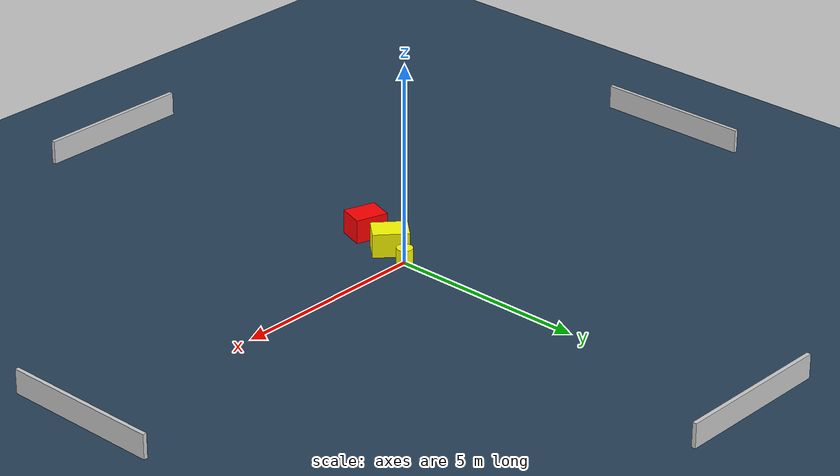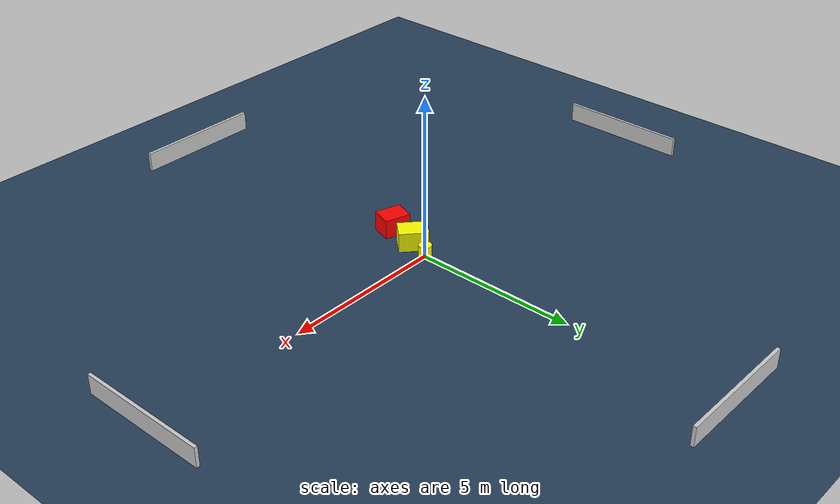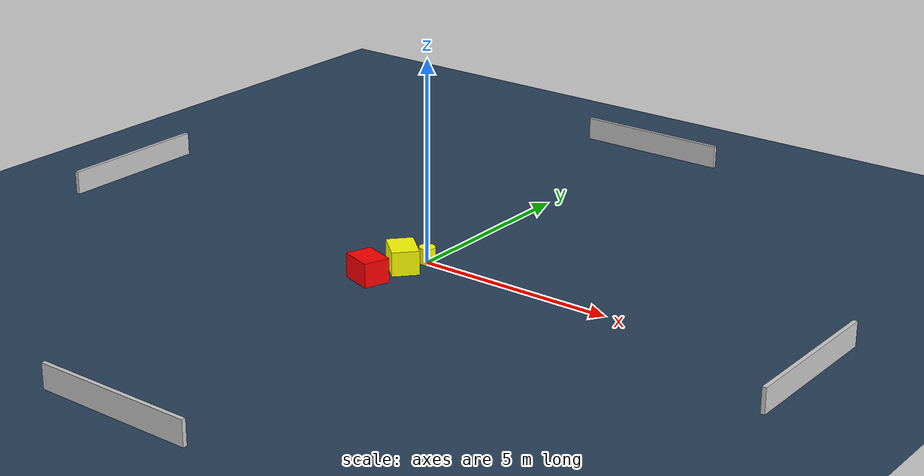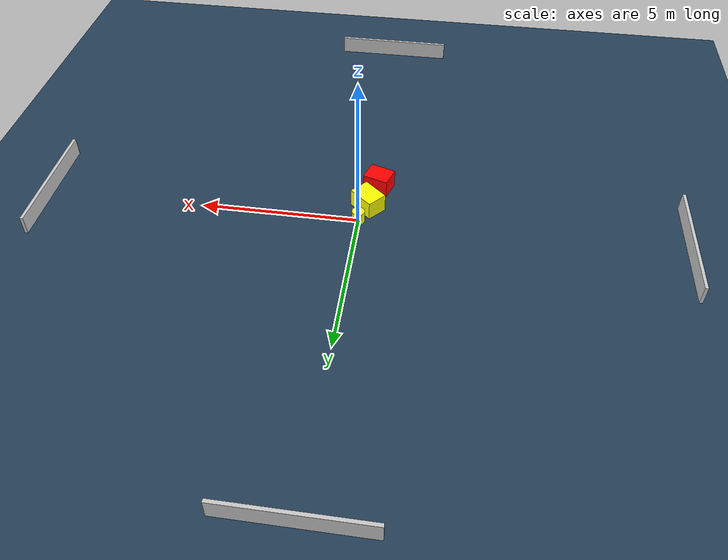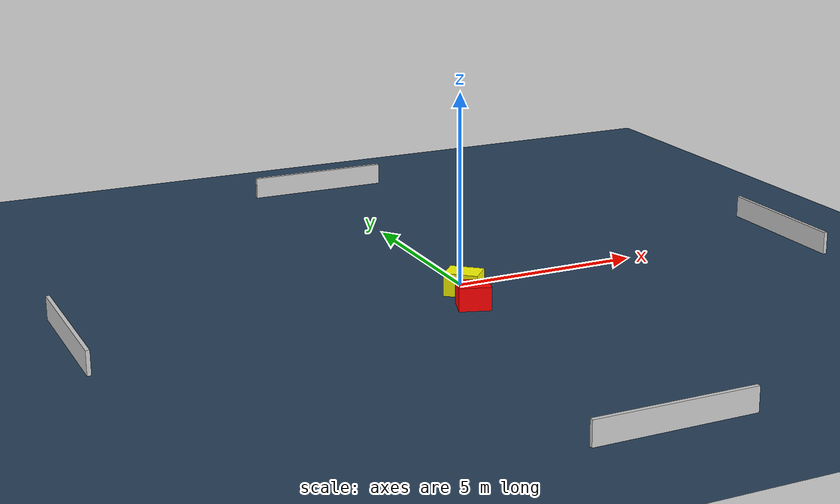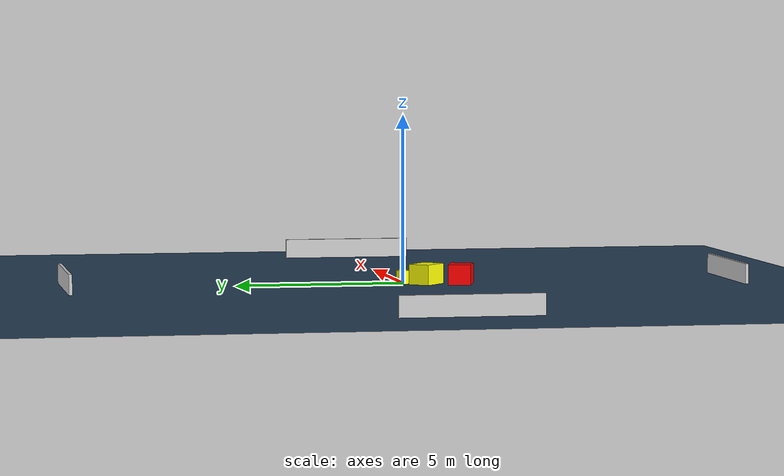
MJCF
<?xml version="1.0" ?>
<mujoco model="generated_environment">
  <option timestep="0.01" integrator="RK4" cone="elliptic"/>
  <default>
    <geom density="1"/>
  </default>
  <asset>
    <texture builtin="gradient" height="3072" name="skybox" rgb1="0.3 0.5 0.7" rgb2="0 0 0" type="skybox" width="512"/>
    <texture builtin="checker" height="300" name="groundplane" rgb1="0.2 0.3 0.4" rgb2="0.1 0.2 0.3" type="2d" width="300"/>
    <material name="groundplane" reflectance="0.2" texrepeat="5 5" texture="groundplane"/>
  </asset>
  <worldbody>
    <light dir="0 0 -1" directional="true" pos="0 0 1.5"/>
    <geom condim="3" friction="0.5 0.005 0.001" material="groundplane" name="floor" pos="0 0 0" size="0 0 0.05" type="plane"/>
    <body name="walls">
      <geom name="wall_1" condim="4" pos="-10.0 0.0 0.3" rgba="0.800000011920929 0.800000011920929 0.800000011920929 1.0" size="0.05 2.0 0.3" type="box"/>
      <geom name="wall_2" condim="4" pos="10.0 0.0 0.3" rgba="0.800000011920929 0.800000011920929 0.800000011920929 1.0" size="0.05 2.0 0.3" type="box"/>
      <geom name="wall_3" condim="4" pos="0.0 -10.0 0.3" rgba="0.800000011920929 0.800000011920929 0.800000011920929 1.0" size="2.0 0.05 0.3" type="box"/>
      <geom name="wall_4" condim="4" pos="0.0 10.0 0.3" rgba="0.800000011920929 0.800000011920929 0.800000011920929 1.0" size="2.0 0.05 0.3" type="box"/>
    </body>
    <body name="robot">
      <joint name="joint_x" type="slide" pos="0 0 0" axis="1 0 0"/>
      <joint name="joint_y" type="slide" pos="0 0 0" axis="0 1 0"/>
      <geom name="robot" type="cylinder" pos="0.0 0.0 0.2" size="0.2 0.2 0.0" mass="5.0" friction="1.0 0.005 0.0001" condim="4" rgba="1.0 1.0 0.0 1.0"/>
    </body>
    <body name="obstacle_1_movable">
      <geom name="obstacle_1_movable" condim="4" pos="-0.2138650552085685 -0.6657008208773604 0.3" euler="0 0 318.2356147617774" friction="0.0 0.005 0.001" rgba="1.0 1.0 0.0 1.0" size="0.44095485253966477 0.3303032446548595 0.3" type="box" mass="0.1"/>
      <joint type="free"/>
    </body>
    <body name="obstacle_2_static">
      <geom name="obstacle_2_static" condim="4" pos="-0.4416393296335382 -1.6647688475668692 0.3" euler="0 0 251.7294554950468" friction="0.0 0.005 0.001" rgba="1.0 0.0 0.0 1.0" size="0.3283755318276685 0.4070847798472774 0.3" type="box"/>
    </body>
  </worldbody>
  <actuator>
    <motor name="actuator_x" joint="joint_x" gear="1" ctrlrange="-1 1"/>
    <motor name="actuator_y" joint="joint_y" gear="1" ctrlrange="-1 1"/>
  </actuator>
</mujoco>
